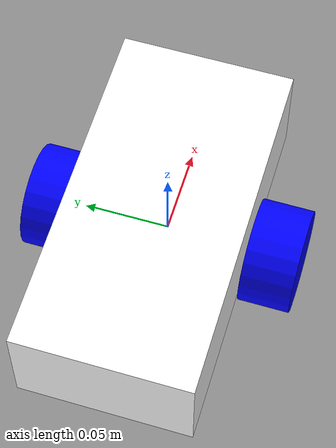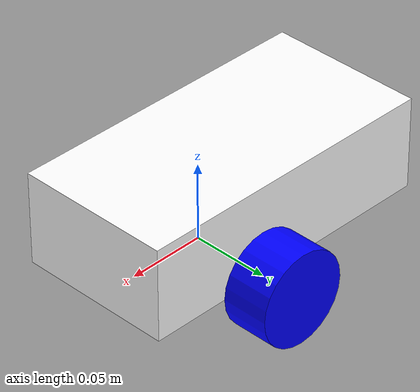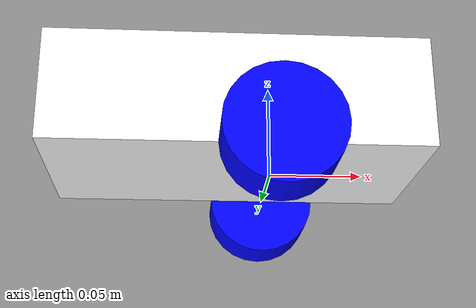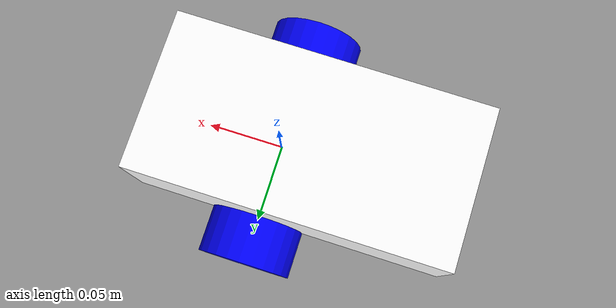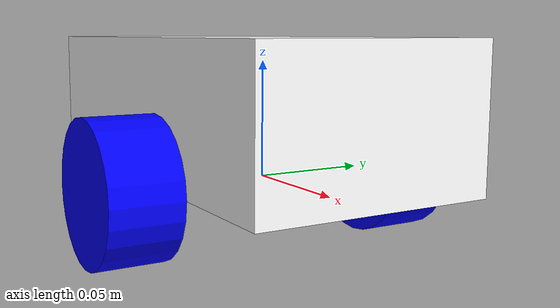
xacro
<?xml version="1.0"?>
<robot xmlns:xacro="http://www.ros.org/wiki/xacro" name="urdf_tutorial">

    <!-- COLOR -->
    <material name="white">
        <color rgba="1 1 1 1" />
    </material>

    <material name="blue">
        <color rgba="0 0 1 1"/>
    </material>

    <!-- BASE LINK -->
    <link name="base_link">
    </link>

    <!-- BODY LINK -->
    <joint name="body_joint" type="fixed">
        <parent link="base_link"/>
        <child link="body"/>
        <origin xyz="-0.12 0 0"/>
    </joint>

    <link name="body">
        <visual>
            <origin xyz="0.1 0 0.03"/>
            <geometry>
                <box size="0.2 0.1 0.06"/>
            </geometry>
            <material name="white"/>
        </visual>
    </link>

    <!-- LEFT WHEEL LINK -->
    <joint name="left_wheel_joint" type="continuous">
        <parent link="base_link"/>
        <child link="left_wheel"/>
        <origin xyz="0 0.065 0" rpy="-${pi/2} 0 0" />
        <axis xyz="0 0 1"/>
    </joint>

    <link name="left_wheel">
        <visual>
            <geometry>
                <cylinder radius="0.03" length="0.03"/>
            </geometry>
            <material name="blue"/>
        </visual>
    </link>

    <!-- RIGHT WHEEL LINK -->
    <joint name="right_wheel_joint" type="continuous">
        <parent link="base_link"/>
        <child link="right_wheel"/>
        <origin xyz="0 -0.065 0" rpy="${pi/2} 0 0" />
        <axis xyz="0 0 -1"/>
    </joint>

    <link name="right_wheel">
        <visual>
            <geometry>
                <cylinder radius="0.03" length="0.03"/>
            </geometry>
            <material name="blue"/>
        </visual>
    </link>

</robot>
